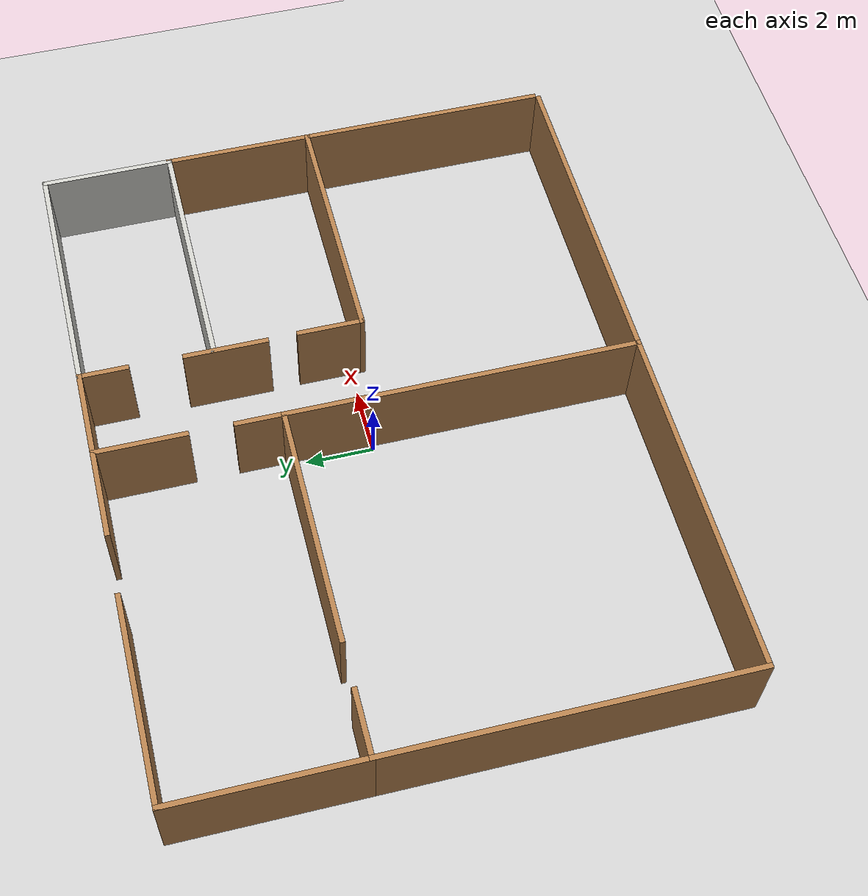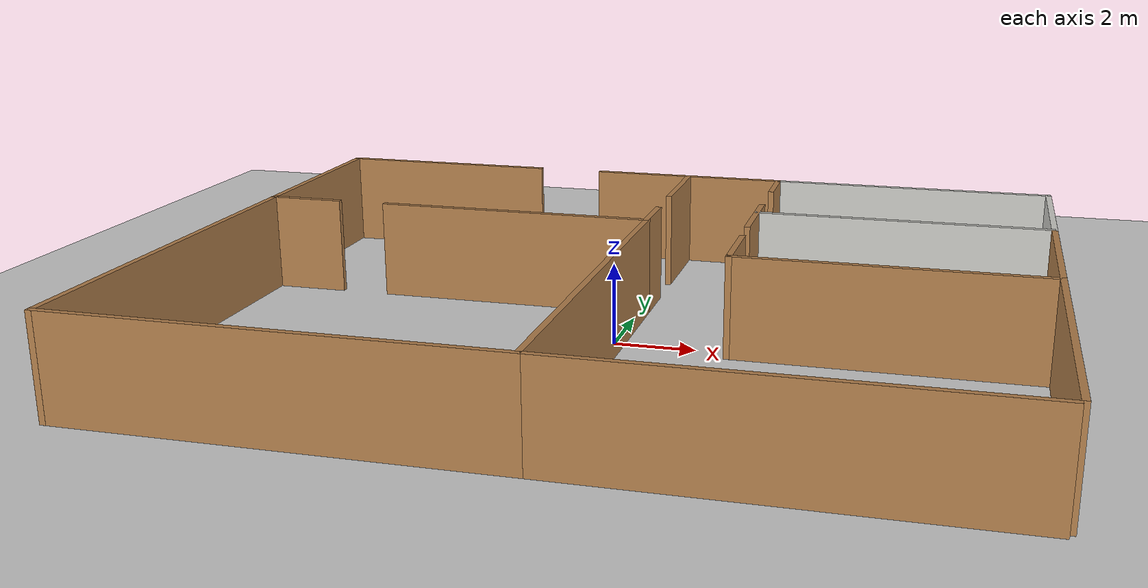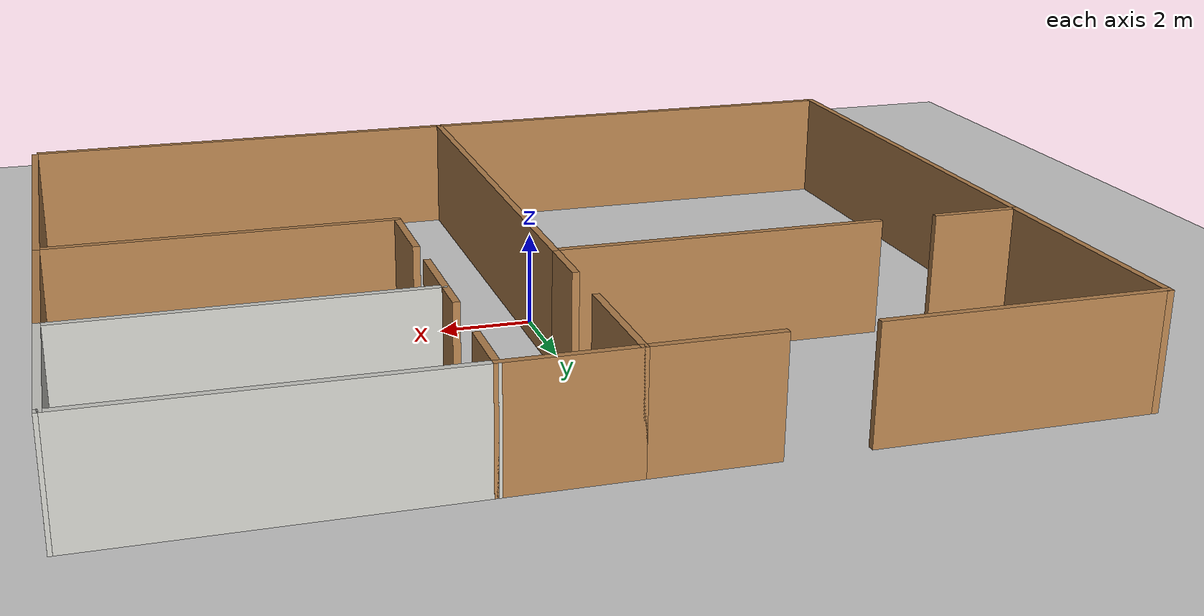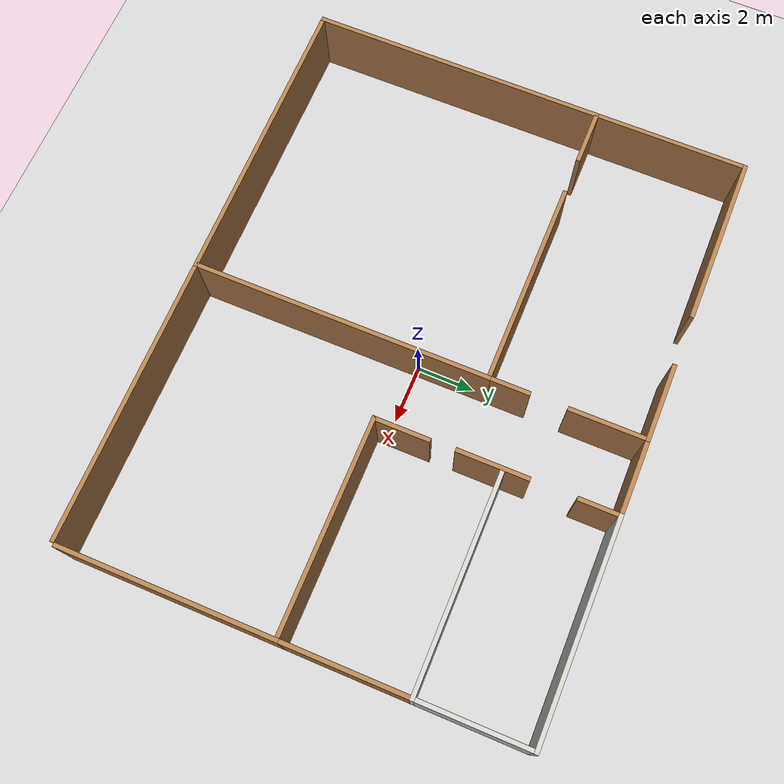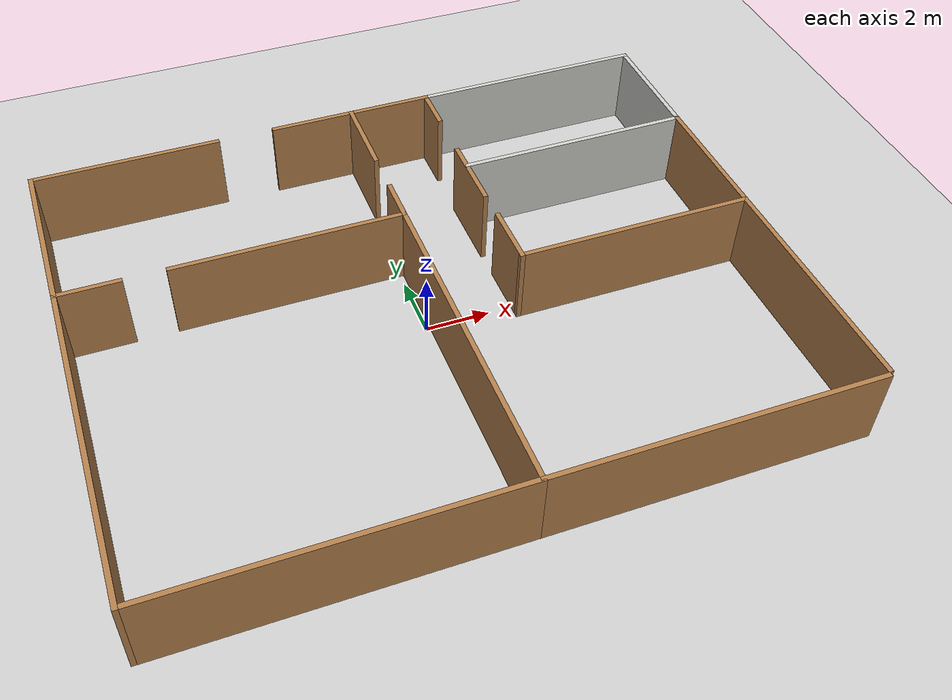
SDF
<?xml version="1.0" ?>
<sdf version="1.6">
  <world name="apartment_p">

    <gui>
      <camera name="user_camera">
        <pose>0 0.0 25.0 0 1.5707 1.5707</pose>
      </camera>
    </gui>

    <light name="sun" type="directional">
      <cast_shadows>1</cast_shadows>
      <pose>0 0 500 0 -0 0</pose>
      <diffuse>0.8 0.8 0.8 1</diffuse>
      <specular>0.2 0.2 0.2 1</specular>
      <attenuation>
        <range>1000</range>
        <constant>0.9</constant>
        <linear>0.01</linear>
        <quadratic>0.001</quadratic>
      </attenuation>
      <direction>0 0.5 -0.9</direction>
    </light>

    <include>
      <uri>model://ground_plane</uri>
    </include>

    <include>
      <pose>0 0 0 0 0 0</pose>
      <uri>model://apartment_simp</uri>
    </include>

  </world>
</sdf>

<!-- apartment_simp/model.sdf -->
<sdf version='1.7'>
  <model name='apartment_simp'>
    <pose>0.105279 -7.3724 0 0 -0 0</pose>
    <link name='Wall_48'>
      <collision name='Wall_48_Collision'>
        <geometry>
          <box>
            <size>5.5 0.15 2.5</size>
          </box>
        </geometry>
        <pose>0 0 1.25 0 -0 0</pose>
      </collision>
      <visual name='Wall_48_Visual'>
        <pose>0 0 1.25 0 -0 0</pose>
        <geometry>
          <box>
            <size>5.5 0.15 2.5</size>
          </box>
        </geometry>
        <material>
          <script>
            <uri>file://media/materials/scripts/gazebo.material</uri>
            <name>Gazebo/Wood</name>
          </script>
          <ambient>1 1 1 1</ambient>
        </material>
        <meta>
          <layer>0</layer>
        </meta>
      </visual>
      <pose>-10.1602 5.17498 0 0 -0 -1.5708</pose>
    </link>
    <link name='Wall_51'>
      <collision name='Wall_51_Collision'>
        <geometry>
          <box>
            <size>2.75 0.15 2.5</size>
          </box>
        </geometry>
        <pose>0 0 1.25 0 -0 0</pose>
      </collision>
      <visual name='Wall_51_Visual'>
        <pose>0 0 1.25 0 -0 0</pose>
        <geometry>
          <box>
            <size>2.75 0.15 2.5</size>
          </box>
        </geometry>
        <material>
          <script>
            <uri>file://media/materials/scripts/gazebo.material</uri>
            <name>Gazebo/Wood</name>
          </script>
          <ambient>1 1 1 1</ambient>
        </material>
        <meta>
          <layer>0</layer>
        </meta>
      </visual>
      <pose>-1.11015 7.84998 0 0 -0 3.14159</pose>
    </link>
    <link name='Wall_53'>
      <collision name='Wall_53_Collision'>
        <geometry>
          <box>
            <size>6 0.15 2.5</size>
          </box>
        </geometry>
        <pose>0 0 1.25 0 -0 0</pose>
      </collision>
      <visual name='Wall_53_Visual'>
        <pose>0 0 1.25 0 -0 0</pose>
        <geometry>
          <box>
            <size>6 0.15 2.5</size>
          </box>
        </geometry>
        <material>
          <script>
            <uri>file://media/materials/scripts/gazebo.material</uri>
            <name>Gazebo/Wood</name>
          </script>
          <ambient>1 1 1 1</ambient>
        </material>
        <meta>
          <layer>0</layer>
        </meta>
      </visual>
      <pose>-7.23515 7.84998 0 0 -0 0</pose>
    </link>
    <link name='Wall_55'>
      <collision name='Wall_55_Collision'>
        <geometry>
          <box>
            <size>2.75 0.15 2.5</size>
          </box>
        </geometry>
        <pose>0 0 1.25 0 -0 0</pose>
      </collision>
      <visual name='Wall_55_Visual'>
        <pose>0 0 1.25 0 -0 0</pose>
        <geometry>
          <box>
            <size>2.75 0.15 2.5</size>
          </box>
        </geometry>
        <material>
          <script>
            <uri>file://media/materials/scripts/gazebo.material</uri>
            <name>Gazebo/Wood</name>
          </script>
          <ambient>1 1 1 1</ambient>
        </material>
        <meta>
          <layer>0</layer>
        </meta>
      </visual>
      <pose>0.189849 6.54998 0 0 -0 -1.5708</pose>
    </link>
    <link name='Wall_58'>
      <collision name='Wall_58_Collision'>
        <geometry>
          <box>
            <size>1.5 0.15 2.5</size>
          </box>
        </geometry>
        <pose>0 0 1.25 0 -0 0</pose>
      </collision>
      <visual name='Wall_58_Visual'>
        <pose>0 0 1.25 0 -0 0</pose>
        <geometry>
          <box>
            <size>1.5 0.15 2.5</size>
          </box>
        </geometry>
        <material>
          <script>
            <uri>file://media/materials/scripts/gazebo.material</uri>
            <name>Gazebo/Wood</name>
          </script>
          <ambient>1 1 1 1</ambient>
        </material>
        <meta>
          <layer>0</layer>
        </meta>
      </visual>
      <pose>0.189849 3.17498 0 0 -0 1.5708</pose>
    </link>
    <link name='Wall_60'>
      <collision name='Wall_60_Collision'>
        <geometry>
          <box>
            <size>2.75 0.15 2.5</size>
          </box>
        </geometry>
        <pose>0 0 1.25 0 -0 0</pose>
      </collision>
      <visual name='Wall_60_Visual'>
        <pose>0 0 1.25 0 -0 0</pose>
        <geometry>
          <box>
            <size>2.75 0.15 2.5</size>
          </box>
        </geometry>
        <material>
          <script>
            <uri>file://media/materials/scripts/gazebo.material</uri>
            <name>Gazebo/Wood</name>
          </script>
          <ambient>1 1 1 1</ambient>
        </material>
        <meta>
          <layer>0</layer>
        </meta>
      </visual>
      <pose>1.48985 7.84998 0 0 -0 0</pose>
    </link>
    <link name='Wall_62'>
      <collision name='Wall_62_Collision'>
        <geometry>
          <box>
            <size>1.5 0.15 2.5</size>
          </box>
        </geometry>
        <pose>0 0 1.25 0 -0 0</pose>
      </collision>
      <visual name='Wall_62_Visual'>
        <pose>0 0 1.25 0 -0 0</pose>
        <geometry>
          <box>
            <size>1.5 0.15 2.5</size>
          </box>
        </geometry>
        <material>
          <script>
            <uri>file://media/materials/scripts/gazebo.material</uri>
            <name>Gazebo/Wood</name>
          </script>
          <ambient>1 1 1 1</ambient>
        </material>
        <meta>
          <layer>0</layer>
        </meta>
      </visual>
      <pose>2.78985 7.17498 0 0 -0 -1.5708</pose>
    </link>
    <link name='Wall_64'>
      <collision name='Wall_64_Collision'>
        <geometry>
          <box>
            <size>2.5 0.15 2.5</size>
          </box>
        </geometry>
        <pose>0 0 1.25 0 -0 0</pose>
      </collision>
      <visual name='Wall_64_Visual'>
        <pose>0 0 1.25 0 -0 0</pose>
        <geometry>
          <box>
            <size>2.5 0.15 2.5</size>
          </box>
        </geometry>
        <material>
          <script>
            <uri>file://media/materials/scripts/gazebo.material</uri>
            <name>Gazebo/Wood</name>
          </script>
          <ambient>1 1 1 1</ambient>
        </material>
        <meta>
          <layer>0</layer>
        </meta>
      </visual>
      <pose>2.77952 3.64655 0 0 -0 -1.5708</pose>
    </link>
    <link name='Wall_66'>
      <collision name='Wall_66_Collision'>
        <geometry>
          <box>
            <size>7.5 0.15 2.5</size>
          </box>
        </geometry>
        <pose>0 0 1.25 0 -0 0</pose>
      </collision>
      <visual name='Wall_66_Visual'>
        <pose>0 0 1.25 0 -0 0</pose>
        <geometry>
          <box>
            <size>7.5 0.15 2.5</size>
          </box>
        </geometry>
        <material>
          <script>
            <uri>file://media/materials/scripts/gazebo.material</uri>
            <name>Gazebo/CeilingTiled</name>
          </script>
          <ambient>1 1 1 1</ambient>
        </material>
        <meta>
          <layer>0</layer>
        </meta>
      </visual>
      <pose>6.48511 3.99561 0 0 -0 0</pose>
    </link>
    <link name='Wall_67'>
      <collision name='Wall_67_Collision'>
        <geometry>
          <box>
            <size>4 0.15 2.5</size>
          </box>
        </geometry>
        <pose>0 0 1.25 0 -0 0</pose>
      </collision>
      <visual name='Wall_67_Visual'>
        <pose>0 0 1.25 0 -0 0</pose>
        <geometry>
          <box>
            <size>4 0.15 2.5</size>
          </box>
        </geometry>
        <material>
          <script>
            <uri>file://media/materials/scripts/gazebo.material</uri>
            <name>Gazebo/CeilingTiled</name>
          </script>
          <ambient>1 1 1 1</ambient>
        </material>
        <meta>
          <layer>0</layer>
        </meta>
      </visual>
      <pose>10.1601 5.92061 0 0 -0 1.5708</pose>
    </link>
    <link name='Wall_68'>
      <collision name='Wall_68_Collision'>
        <geometry>
          <box>
            <size>7.52026 0.15 2.5</size>
          </box>
        </geometry>
        <pose>0 0 1.25 0 -0 0</pose>
      </collision>
      <visual name='Wall_68_Visual'>
        <pose>0 0 1.25 0 -0 0</pose>
        <geometry>
          <box>
            <size>7.52026 0.15 2.5</size>
          </box>
        </geometry>
        <material>
          <script>
            <uri>file://media/materials/scripts/gazebo.material</uri>
            <name>Gazebo/CeilingTiled</name>
          </script>
          <ambient>1 1 1 1</ambient>
        </material>
        <meta>
          <layer>0</layer>
        </meta>
      </visual>
      <pose>6.47498 7.84779 0 0 -0 3.141</pose>
    </link>
    <link name='Wall_72'>
      <collision name='Wall_72_Collision'>
        <geometry>
          <box>
            <size>4.5 0.15 2.5</size>
          </box>
        </geometry>
        <pose>0 0 1.25 0 -0 0</pose>
      </collision>
      <visual name='Wall_72_Visual'>
        <pose>0 0 1.25 0 -0 0</pose>
        <geometry>
          <box>
            <size>4.5 0.15 2.5</size>
          </box>
        </geometry>
        <material>
          <script>
            <uri>file://media/materials/scripts/gazebo.material</uri>
            <name>Gazebo/Wood</name>
          </script>
          <ambient>1 1 1 1</ambient>
        </material>
        <meta>
          <layer>0</layer>
        </meta>
      </visual>
      <pose>10.1601 1.82061 0 0 -0 1.5708</pose>
    </link>
    <link name='Wall_74'>
      <collision name='Wall_74_Collision'>
        <geometry>
          <box>
            <size>2 0.15 2.5</size>
          </box>
        </geometry>
        <pose>0 0 1.25 0 -0 0</pose>
      </collision>
      <visual name='Wall_74_Visual'>
        <pose>0 0 1.25 0 -0 0</pose>
        <geometry>
          <box>
            <size>2 0.15 2.5</size>
          </box>
        </geometry>
        <material>
          <script>
            <uri>file://media/materials/scripts/gazebo.material</uri>
            <name>Gazebo/Wood</name>
          </script>
          <ambient>1 1 1 1</ambient>
        </material>
        <meta>
          <layer>0</layer>
        </meta>
      </visual>
      <pose>-9.23515 2.49998 0 0 -0 0</pose>
    </link>
    <link name='Wall_76'>
      <collision name='Wall_76_Collision'>
        <geometry>
          <box>
            <size>7.25 0.15 2.5</size>
          </box>
        </geometry>
        <pose>0 0 1.25 0 -0 0</pose>
      </collision>
      <visual name='Wall_76_Visual'>
        <pose>0 0 1.25 0 -0 0</pose>
        <geometry>
          <box>
            <size>7.25 0.15 2.5</size>
          </box>
        </geometry>
        <material>
          <script>
            <uri>file://media/materials/scripts/gazebo.material</uri>
            <name>Gazebo/Wood</name>
          </script>
          <ambient>1 1 1 1</ambient>
        </material>
        <meta>
          <layer>0</layer>
        </meta>
      </visual>
      <pose>-3.36015 2.49998 0 0 -0 3.14159</pose>
    </link>
    <link name='Wall_78'>
      <collision name='Wall_78_Collision'>
        <geometry>
          <box>
            <size>10.5 0.15 2.5</size>
          </box>
        </geometry>
        <pose>0 0 1.25 0 -0 0</pose>
      </collision>
      <visual name='Wall_78_Visual'>
        <pose>0 0 1.25 0 -0 0</pose>
        <geometry>
          <box>
            <size>10.5 0.15 2.5</size>
          </box>
        </geometry>
        <material>
          <script>
            <uri>file://media/materials/scripts/gazebo.material</uri>
            <name>Gazebo/Wood</name>
          </script>
          <ambient>1 1 1 1</ambient>
        </material>
        <meta>
          <layer>0</layer>
        </meta>
      </visual>
      <pose>-10.1602 -2.67502 0 0 -0 -1.5708</pose>
    </link>
    <link name='Wall_80'>
      <collision name='Wall_80_Collision'>
        <geometry>
          <box>
            <size>10.5 0.15 2.5</size>
          </box>
        </geometry>
        <pose>0 0 1.25 0 -0 0</pose>
      </collision>
      <visual name='Wall_80_Visual'>
        <pose>0 0 1.25 0 -0 0</pose>
        <geometry>
          <box>
            <size>10.5 0.15 2.5</size>
          </box>
        </geometry>
        <material>
          <script>
            <uri>file://media/materials/scripts/gazebo.material</uri>
            <name>Gazebo/Wood</name>
          </script>
          <ambient>1 1 1 1</ambient>
        </material>
        <meta>
          <layer>0</layer>
        </meta>
      </visual>
      <pose>0.189849 -2.67502 0 0 -0 -1.5708</pose>
    </link>
    <link name='Wall_81'>
      <collision name='Wall_81_Collision'>
        <geometry>
          <box>
            <size>10.5 0.15 2.5</size>
          </box>
        </geometry>
        <pose>0 0 1.25 0 -0 0</pose>
      </collision>
      <visual name='Wall_81_Visual'>
        <pose>0 0 1.25 0 -0 0</pose>
        <geometry>
          <box>
            <size>10.5 0.15 2.5</size>
          </box>
        </geometry>
        <material>
          <script>
            <uri>file://media/materials/scripts/gazebo.material</uri>
            <name>Gazebo/Wood</name>
          </script>
          <ambient>1 1 1 1</ambient>
        </material>
        <meta>
          <layer>0</layer>
        </meta>
      </visual>
      <pose>-4.98515 -7.85002 0 0 -0 3.14159</pose>
    </link>
    <link name='Wall_83'>
      <collision name='Wall_83_Collision'>
        <geometry>
          <box>
            <size>7.5 0.15 2.5</size>
          </box>
        </geometry>
        <pose>0 0 1.25 0 -0 0</pose>
      </collision>
      <visual name='Wall_83_Visual'>
        <pose>0 0 1.25 0 -0 0</pose>
        <geometry>
          <box>
            <size>7.5 0.15 2.5</size>
          </box>
        </geometry>
        <material>
          <script>
            <uri>file://media/materials/scripts/gazebo.material</uri>
            <name>Gazebo/Wood</name>
          </script>
          <ambient>1 1 1 1</ambient>
        </material>
        <meta>
          <layer>0</layer>
        </meta>
      </visual>
      <pose>6.48511 -0.354391 0 0 -0 3.14159</pose>
    </link>
    <link name='Wall_85'>
      <collision name='Wall_85_Collision'>
        <geometry>
          <box>
            <size>2 0.15 2.5</size>
          </box>
        </geometry>
        <pose>0 0 1.25 0 -0 0</pose>
      </collision>
      <visual name='Wall_85_Visual'>
        <pose>0 0 1.25 0 -0 0</pose>
        <geometry>
          <box>
            <size>2 0.15 2.5</size>
          </box>
        </geometry>
        <material>
          <script>
            <uri>file://media/materials/scripts/gazebo.material</uri>
            <name>Gazebo/Wood</name>
          </script>
          <ambient>1 1 1 1</ambient>
        </material>
        <meta>
          <layer>0</layer>
        </meta>
      </visual>
      <pose>2.81011 0.57061 0 0 -0 1.5708</pose>
    </link>
    <link name='Wall_87'>
      <collision name='Wall_87_Collision'>
        <geometry>
          <box>
            <size>10 0.15 2.5</size>
          </box>
        </geometry>
        <pose>0 0 1.25 0 -0 0</pose>
      </collision>
      <visual name='Wall_87_Visual'>
        <pose>0 0 1.25 0 -0 0</pose>
        <geometry>
          <box>
            <size>10 0.15 2.5</size>
          </box>
        </geometry>
        <material>
          <script>
            <uri>file://media/materials/scripts/gazebo.material</uri>
            <name>Gazebo/Wood</name>
          </script>
          <ambient>1 1 1 1</ambient>
        </material>
        <meta>
          <layer>0</layer>
        </meta>
      </visual>
      <pose>5.11485 -7.85002 0 0 -0 0</pose>
    </link>
    <link name='Wall_89'>
      <collision name='Wall_89_Collision'>
        <geometry>
          <box>
            <size>7.5 0.15 2.5</size>
          </box>
        </geometry>
        <pose>0 0 1.25 0 -0 0</pose>
      </collision>
      <visual name='Wall_89_Visual'>
        <pose>0 0 1.25 0 -0 0</pose>
        <geometry>
          <box>
            <size>7.5 0.15 2.5</size>
          </box>
        </geometry>
        <material>
          <script>
            <uri>file://media/materials/scripts/gazebo.material</uri>
            <name>Gazebo/Wood</name>
          </script>
          <ambient>1 1 1 1</ambient>
        </material>
        <meta>
          <layer>0</layer>
        </meta>
      </visual>
      <pose>10.1601 -4.02939 0 0 -0 -1.5708</pose>
    </link>
    <static>1</static>
  </model>
</sdf>
